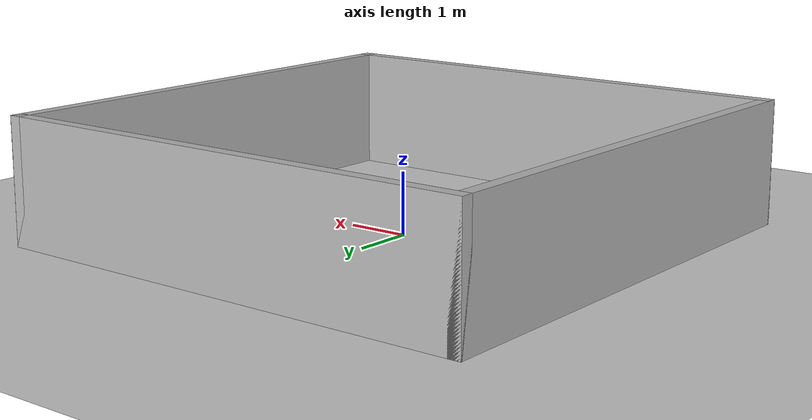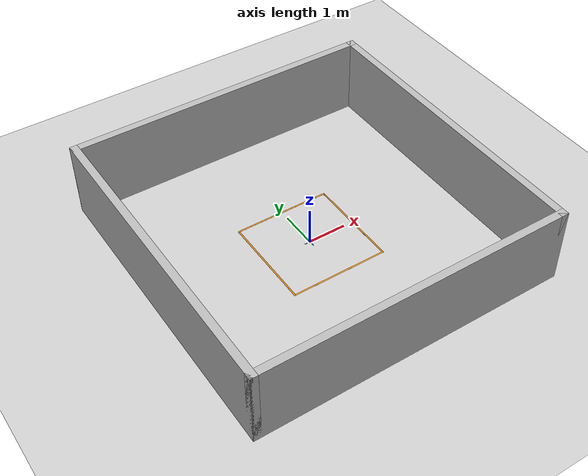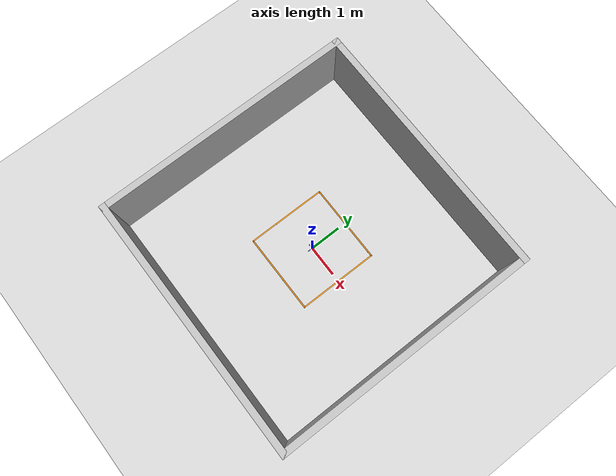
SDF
<?xml version="1.0" ?>
<sdf version="1.9">
  <world name="demo_area_2m5">
    <gravity>0 0 -9.81</gravity>
    <physics name="1ms" type="ignored">
      <max_step_size>0.010</max_step_size>
      <real_time_factor>1.0</real_time_factor>
    </physics>

    <plugin
      filename="gz-sim-physics-system"
      name="gz::sim::systems::Physics" />
    <plugin
      filename="gz-sim-user-commands-system"
      name="gz::sim::systems::UserCommands" />
    <plugin
      filename="gz-sim-scene-broadcaster-system"
      name="gz::sim::systems::SceneBroadcaster" />
    <plugin
      filename="gz-sim-contact-system"
      name="gz::sim::systems::Contact" />
    <plugin
      filename="gz-sim-imu-system"
      name="gz::sim::systems::Imu" />
    <plugin
      filename="gz-sim-sensors-system"
      name="gz::sim::systems::Sensors">
      <render_engine>ogre2</render_engine>
    </plugin>

    <light name="sun" type="directional">
      <cast_shadows>false</cast_shadows>
      <pose>0 0 10 0 0 0</pose>
      <diffuse>0.8 0.8 0.8 1</diffuse>
      <specular>0.2 0.2 0.2 1</specular>
      <attenuation>
        <range>1000</range>
        <constant>0.9</constant>
        <linear>0.01</linear>
        <quadratic>0.001</quadratic>
      </attenuation>
      <direction>-0.5 0.1 -0.9</direction>
    </light>

    <model name="ground_plane">
      <static>true</static>
      <link name="link">
        <collision name="collision">
          <geometry>
            <plane><normal>0 0 1</normal><size>100 100</size></plane>
          </geometry>
        </collision>
        <visual name="visual">
          <geometry>
            <plane><normal>0 0 1</normal><size>100 100</size></plane>
          </geometry>
          <material>
            <ambient>0.8 0.8 0.8 1</ambient>
            <diffuse>0.8 0.8 0.8 1</diffuse>
          </material>
        </visual>
      </link>
    </model>

    <!--
      Outer enclosure at -+4.0 m. Present so the LiDAR has returns (see the
      header note); far enough that its inflation never reaches the play area.
    -->
    <model name="enclosure_north">
      <static>true</static>
      <pose>0 4 1.0 0 0 0</pose>
      <link name="link">
        <collision name="collision"><geometry><box><size>8.2 0.2 2.0</size></box></geometry></collision>
        <visual name="visual"><geometry><box><size>8.2 0.2 2.0</size></box></geometry></visual>
      </link>
    </model>
    <model name="enclosure_south">
      <static>true</static>
      <pose>0 -4 1.0 0 0 0</pose>
      <link name="link">
        <collision name="collision"><geometry><box><size>8.2 0.2 2.0</size></box></geometry></collision>
        <visual name="visual"><geometry><box><size>8.2 0.2 2.0</size></box></geometry></visual>
      </link>
    </model>
    <model name="enclosure_east">
      <static>true</static>
      <pose>4 0 1.0 0 0 0</pose>
      <link name="link">
        <collision name="collision"><geometry><box><size>0.2 8.2 2.0</size></box></geometry></collision>
        <visual name="visual"><geometry><box><size>0.2 8.2 2.0</size></box></geometry></visual>
      </link>
    </model>
    <model name="enclosure_west">
      <static>true</static>
      <pose>-4 0 1.0 0 0 0</pose>
      <link name="link">
        <collision name="collision"><geometry><box><size>0.2 8.2 2.0</size></box></geometry></collision>
        <visual name="visual"><geometry><box><size>0.2 8.2 2.0</size></box></geometry></visual>
      </link>
    </model>

    <model name="geofence_marker">
      <static>true</static>
      <link name="link">
        <visual name="edge_north">
          <pose>0 1.25 0.0005 0 0 0</pose>
          <geometry><box><size>2.54 0.04 0.001</size></box></geometry>
          <material>
            <ambient>0.9 0.55 0.1 1</ambient>
            <diffuse>0.9 0.55 0.1 1</diffuse>
          </material>
        </visual>
        <visual name="edge_south">
          <pose>0 -1.25 0.0005 0 0 0</pose>
          <geometry><box><size>2.54 0.04 0.001</size></box></geometry>
          <material>
            <ambient>0.9 0.55 0.1 1</ambient>
            <diffuse>0.9 0.55 0.1 1</diffuse>
          </material>
        </visual>
        <visual name="edge_east">
          <pose>1.25 0 0.0005 0 0 0</pose>
          <geometry><box><size>0.04 2.54 0.001</size></box></geometry>
          <material>
            <ambient>0.9 0.55 0.1 1</ambient>
            <diffuse>0.9 0.55 0.1 1</diffuse>
          </material>
        </visual>
        <visual name="edge_west">
          <pose>-1.25 0 0.0005 0 0 0</pose>
          <geometry><box><size>0.04 2.54 0.001</size></box></geometry>
          <material>
            <ambient>0.9 0.55 0.1 1</ambient>
            <diffuse>0.9 0.55 0.1 1</diffuse>
          </material>
        </visual>
        <!-- The datum: map (0,0), the point under the drone. -->
        <visual name="datum_x">
          <pose>0 0 0.0005 0 0 0</pose>
          <geometry><box><size>0.30 0.02 0.001</size></box></geometry>
          <material>
            <ambient>0.1 0.4 0.9 1</ambient>
            <diffuse>0.1 0.4 0.9 1</diffuse>
          </material>
        </visual>
        <visual name="datum_y">
          <pose>0 0 0.0005 0 0 0</pose>
          <geometry><box><size>0.02 0.30 0.001</size></box></geometry>
          <material>
            <ambient>0.1 0.4 0.9 1</ambient>
            <diffuse>0.1 0.4 0.9 1</diffuse>
          </material>
        </visual>
      </link>
    </model>
  </world>
</sdf>
